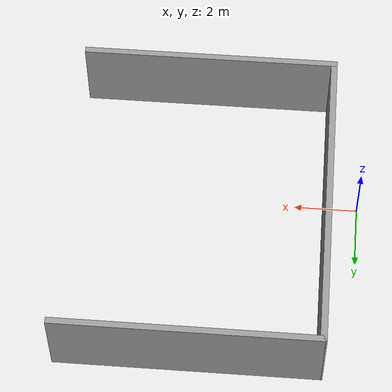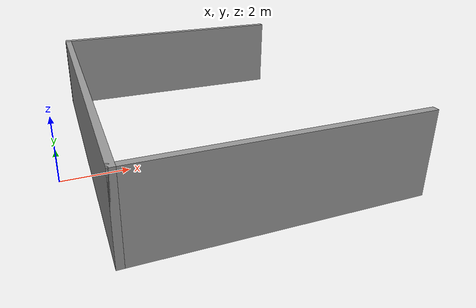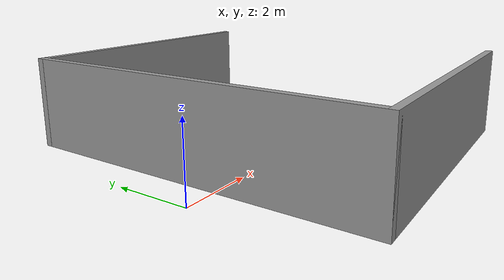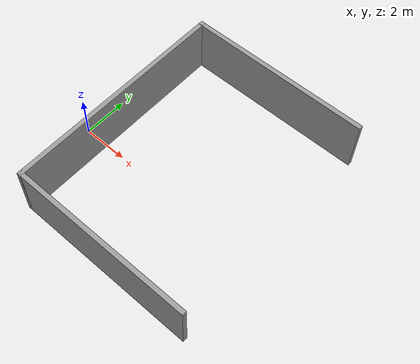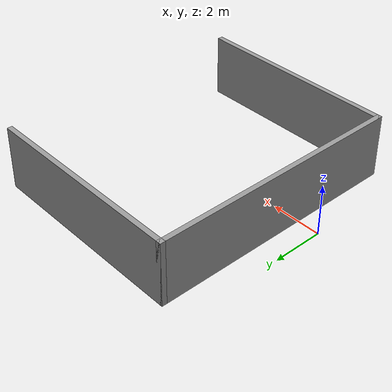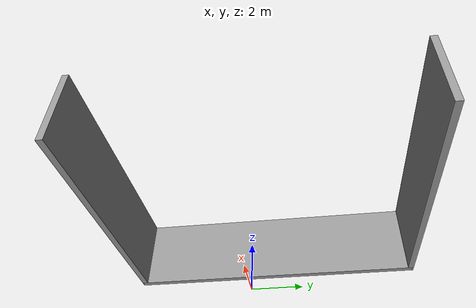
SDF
<?xml version='1.0'?>
<sdf version='1.4'>
  <model name='wall'>
    <link name='Wall_3'>
      <collision name='Wall_3_Collision'>
        <geometry>
          <box>
            <size>8.2 0.2 2.5</size>
          </box>
        </geometry>
        <pose>0 0 1.25 0 -0 0</pose>
      </collision>
      <visual name='Wall_3_Visual'>
        <pose>0 0 1.25 0 -0 0</pose>
        <geometry>
          <box>
            <size>8.2 0.2 2.5</size>
          </box>
        </geometry>
        <material>
          <script>
            <uri>file://media/materials/scripts/gazebo.material</uri>
            <name>Gazebo/Grey</name>
          </script>
        </material>
      </visual>
      <velocity_decay>
        <linear>0</linear>
        <angular>0</angular>
      </velocity_decay>
      <pose>5 6 0 0 -0 0</pose>
    </link>
    <link name='Wall_5'>
      <collision name='Wall_5_Collision'>
        <geometry>
          <box>
            <size>10.2 0.2 2.5</size>
          </box>
        </geometry>
        <pose>0 0 1.25 0 -0 0</pose>
      </collision>
      <visual name='Wall_5_Visual'>
        <pose>0 0 1.25 0 -0 0</pose>
        <geometry>
          <box>
            <size>10.2 0.2 2.5</size>
          </box>
        </geometry>
        <material>
          <script>
            <uri>file://media/materials/scripts/gazebo.material</uri>
            <name>Gazebo/Grey</name>
          </script>
        </material>
      </visual>
      <velocity_decay>
        <linear>0</linear>
        <angular>0</angular>
      </velocity_decay>
      <pose>1 1 0 0 0 -1.5708</pose>
    </link>
    <link name='Wall_7'>
      <collision name='Wall_7_Collision'>
        <geometry>
          <box>
            <size>8.2 0.2 2.5</size>
          </box>
        </geometry>
        <pose>0 0 1.25 0 -0 0</pose>
      </collision>
      <visual name='Wall_7_Visual'>
        <pose>0 0 1.25 0 -0 0</pose>
        <geometry>
          <box>
            <size>8.2 0.2 2.5</size>
          </box>
        </geometry>
        <material>
          <script>
            <uri>file://media/materials/scripts/gazebo.material</uri>
            <name>Gazebo/Grey</name>
          </script>
        </material>
      </visual>
      <velocity_decay>
        <linear>0</linear>
        <angular>0</angular>
      </velocity_decay>
      <pose>5 -4 0 0 -0 0</pose>
    </link>
    <static>1</static>
  </model>
</sdf>
